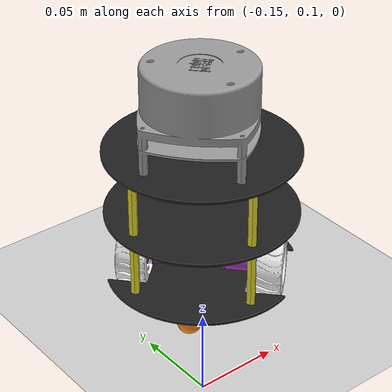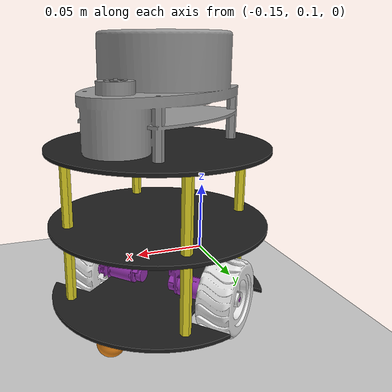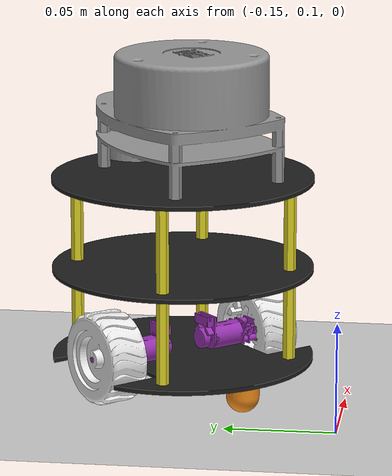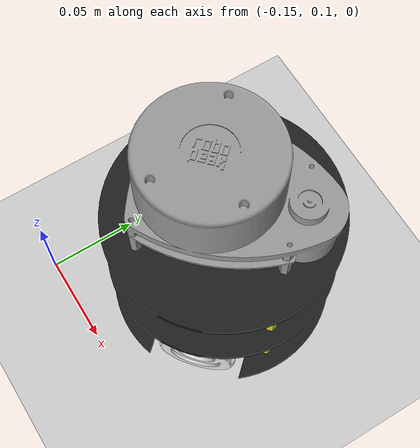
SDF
<sdf version="1.6">
 <world name="default">
  <light name="sun" type="directional">
   <pose>0 0 10 0 -0 0</pose>
   <diffuse>0.8 0.8 0.8 1</diffuse>
   <specular>0.2 0.2 0.2 1</specular>
   <attenuation>
    <range>1000</range>
    <constant>0.9</constant>
    <linear>0.01</linear>
    <quadratic>0.001</quadratic>
   </attenuation>
   <direction>-0.5 0.1 -0.9</direction>
  </light>
  <model name="ground_plane">
   <static>1</static>
   <link name="link">
    <collision name="collision">
     <geometry><plane><normal>0 0 1</normal><size>100 100</size></plane></geometry>
     <surface><friction><ode><mu>100</mu><mu2>50</mu2></ode></friction></surface>
    </collision>
    <visual name="visual">
     <cast_shadows>0</cast_shadows>
     <geometry><plane><normal>0 0 1</normal><size>100 100</size></plane></geometry>
     <material>
      <script><uri>file://media/materials/scripts/gazebo.material</uri><name>Gazebo/Grey</name></script>
     </material>
    </visual>
   </link>
  </model>
  <gravity>0 0 -9.8</gravity>
  <magnetic_field>6e-06 2.3e-05 -4.2e-05</magnetic_field>
  <atmosphere type="adiabatic"/>
  <physics name="default_physics" default="0" type="ode">
   <max_step_size>0.001</max_step_size>
   <real_time_factor>1</real_time_factor>
   <real_time_update_rate>1000</real_time_update_rate>
  </physics>
  <scene><ambient>0.4 0.4 0.4 1</ambient><background>0.7 0.7 0.7 1</background><shadows>1</shadows></scene>
  <audio><device>default</device></audio>
  <spherical_coordinates>
   <surface_model>EARTH_WGS84</surface_model>
   <latitude_deg>0</latitude_deg>
   <longitude_deg>0</longitude_deg>
   <elevation>0</elevation>
   <heading_deg>0</heading_deg>
  </spherical_coordinates>
  <model name="auro">
   <link name="base_link">
    <inertial>
     <pose>4.7e-05 2e-05 0.045747 0 -0 0</pose>
     <mass>1.52381</mass>
     <inertia>
      <ixx>0.00462007</ixx>
      <ixy>-9.79522e-07</ixy>
      <ixz>-0.000165413</ixz>
      <iyy>0.00497893</iyy>
      <iyz>2.07865e-07</iyz>
      <izz>0.00142979</izz>
     </inertia>
    </inertial>
    <collision name="base_link_collision">
     <geometry>
      <mesh>
       <scale>0.001 0.001 0.001</scale>
       <uri>/home/venom/ros/my_test_ws/src/auro_description/meshes/base_link.stl</uri>
      </mesh>
     </geometry>
     <surface><friction><ode><mu>10</mu><mu2>10</mu2></ode></friction></surface>
    </collision>
    <collision name="base_link_fixed_joint_lump__stanoff_fl1_1_collision_1">
     <geometry>
      <mesh>
       <scale>0.001 0.001 0.001</scale>
       <uri>/home/venom/ros/my_test_ws/src/auro_description/meshes/stanoff_fl1_1.stl</uri>
      </mesh>
     </geometry>
     <surface><friction><ode><mu>10</mu><mu2>10</mu2></ode></friction></surface>
    </collision>
    <collision name="base_link_fixed_joint_lump__mid_plate_1_collision_2">
     <geometry>
      <mesh>
       <scale>0.001 0.001 0.001</scale>
       <uri>/home/venom/ros/my_test_ws/src/auro_description/meshes/mid_plate_1.stl</uri>
      </mesh>
     </geometry>
     <surface><friction><ode><mu>10</mu><mu2>10</mu2></ode></friction></surface>
    </collision>
    <collision name="base_link_fixed_joint_lump__stanoff_fl2_1_collision_3">
     <geometry>
      <mesh>
       <scale>0.001 0.001 0.001</scale>
       <uri>/home/venom/ros/my_test_ws/src/auro_description/meshes/stanoff_fl2_1.stl</uri>
      </mesh>
     </geometry>
     <surface><friction><ode><mu>10</mu><mu2>10</mu2></ode></friction></surface>
    </collision>
    <collision name="base_link_fixed_joint_lump__top_plate_1_collision_4">
     <geometry>
      <mesh>
       <scale>0.001 0.001 0.001</scale>
       <uri>/home/venom/ros/my_test_ws/src/auro_description/meshes/top_plate_1.stl</uri>
      </mesh>
     </geometry>
     <surface><friction><ode><mu>10</mu><mu2>10</mu2></ode></friction></surface>
    </collision>
    <collision name="base_link_fixed_joint_lump__lidar_v1_1_collision_5">
     <geometry>
      <mesh>
       <scale>0.001 0.001 0.001</scale>
       <uri>/home/venom/ros/my_test_ws/src/auro_description/meshes/lidar_v1_1.stl</uri>
      </mesh>
     </geometry>
     <surface><friction><ode><mu>10</mu><mu2>10</mu2></ode></friction></surface>
    </collision>
    <collision name="base_link_fixed_joint_lump__stanoff_fr2_1_collision_6">
     <geometry>
      <mesh>
       <scale>0.001 0.001 0.001</scale>
       <uri>/home/venom/ros/my_test_ws/src/auro_description/meshes/stanoff_fr2_1.stl</uri>
      </mesh>
     </geometry>
     <surface><friction><ode><mu>10</mu><mu2>10</mu2></ode></friction></surface>
    </collision>
    <collision name="base_link_fixed_joint_lump__stanoff_bl2_1_collision_7">
     <geometry>
      <mesh>
       <scale>0.001 0.001 0.001</scale>
       <uri>/home/venom/ros/my_test_ws/src/auro_description/meshes/stanoff_bl2_1.stl</uri>
      </mesh>
     </geometry>
     <surface><friction><ode><mu>10</mu><mu2>10</mu2></ode></friction></surface>
    </collision>
    <collision name="base_link_fixed_joint_lump__stanoff_br2_1_collision_8">
     <geometry>
      <mesh>
       <scale>0.001 0.001 0.001</scale>
       <uri>/home/venom/ros/my_test_ws/src/auro_description/meshes/stanoff_br2_1.stl</uri>
      </mesh>
     </geometry>
     <surface><friction><ode><mu>10</mu><mu2>10</mu2></ode></friction></surface>
    </collision>
    <collision name="base_link_fixed_joint_lump__stanoff_fr1_1_collision_9">
     <geometry>
      <mesh>
       <scale>0.001 0.001 0.001</scale>
       <uri>/home/venom/ros/my_test_ws/src/auro_description/meshes/stanoff_fr1_1.stl</uri>
      </mesh>
     </geometry>
     <surface><friction><ode><mu>10</mu><mu2>10</mu2></ode></friction></surface>
    </collision>
    <collision name="base_link_fixed_joint_lump__left_motor_link_1_collision_10">
     <geometry>
      <mesh>
       <scale>0.001 0.001 0.001</scale>
       <uri>/home/venom/ros/my_test_ws/src/auro_description/meshes/left_motor_link_1.stl</uri>
      </mesh>
     </geometry>
     <surface><friction><ode><mu>10</mu><mu2>10</mu2></ode></friction></surface>
    </collision>
    <collision name="base_link_fixed_joint_lump__right_motor_link_1_collision_11">
     <geometry>
      <mesh>
       <scale>0.001 0.001 0.001</scale>
       <uri>/home/venom/ros/my_test_ws/src/auro_description/meshes/right_motor_link_1.stl</uri>
      </mesh>
     </geometry>
     <surface><friction><ode><mu>10</mu><mu2>10</mu2></ode></friction></surface>
    </collision>
    <collision name="base_link_fixed_joint_lump__caster_1_collision_12">
     <geometry>
      <mesh>
       <scale>0.001 0.001 0.001</scale>
       <uri>/home/venom/ros/my_test_ws/src/auro_description/meshes/caster_1.stl</uri>
      </mesh>
     </geometry>
     <surface><friction><ode><mu>0.1</mu><mu2>0.1</mu2></ode></friction></surface>
    </collision>
    <collision name="base_link_fixed_joint_lump__caster_2_collision_13">
     <geometry>
      <mesh>
       <scale>0.001 0.001 0.001</scale>
       <uri>/home/venom/ros/my_test_ws/src/auro_description/meshes/caster_2.stl</uri>
      </mesh>
     </geometry>
     <surface><friction><ode><mu>0.1</mu><mu2>0.1</mu2></ode></friction></surface>
    </collision>
    <collision name="base_link_fixed_joint_lump__stanoff_bl1_1_collision_14">
     <geometry>
      <mesh>
       <scale>0.001 0.001 0.001</scale>
       <uri>/home/venom/ros/my_test_ws/src/auro_description/meshes/stanoff_bl1_1.stl</uri>
      </mesh>
     </geometry>
     <surface><friction><ode><mu>10</mu><mu2>10</mu2></ode></friction></surface>
    </collision>
    <collision name="base_link_fixed_joint_lump__stanoff_br1_1_collision_15">
     <geometry>
      <mesh>
       <scale>0.001 0.001 0.001</scale>
       <uri>/home/venom/ros/my_test_ws/src/auro_description/meshes/stanoff_br1_1.stl</uri>
      </mesh>
     </geometry>
     <surface><friction><ode><mu>10</mu><mu2>10</mu2></ode></friction></surface>
    </collision>
    <visual name="base_link_visual">
     <geometry>
      <mesh>
       <scale>0.001 0.001 0.001</scale>
       <uri>/home/venom/ros/my_test_ws/src/auro_description/meshes/base_link.stl</uri>
      </mesh>
     </geometry>
     <material>
      <script><name>Gazebo/FlatBlack</name><uri>file://media/materials/scripts/gazebo.material</uri></script>
     </material>
    </visual>
    <visual name="base_link_fixed_joint_lump__stanoff_fl1_1_visual_1">
     <geometry>
      <mesh>
       <scale>0.001 0.001 0.001</scale>
       <uri>/home/venom/ros/my_test_ws/src/auro_description/meshes/stanoff_fl1_1.stl</uri>
      </mesh>
     </geometry>
     <material>
      <script><name>Gazebo/DarkYellow</name><uri>file://media/materials/scripts/gazebo.material</uri></script>
     </material>
    </visual>
    <visual name="base_link_fixed_joint_lump__mid_plate_1_visual_2">
     <geometry>
      <mesh>
       <scale>0.001 0.001 0.001</scale>
       <uri>/home/venom/ros/my_test_ws/src/auro_description/meshes/mid_plate_1.stl</uri>
      </mesh>
     </geometry>
     <material>
      <script><name>Gazebo/FlatBlack</name><uri>file://media/materials/scripts/gazebo.material</uri></script>
     </material>
    </visual>
    <visual name="base_link_fixed_joint_lump__stanoff_fl2_1_visual_3">
     <geometry>
      <mesh>
       <scale>0.001 0.001 0.001</scale>
       <uri>/home/venom/ros/my_test_ws/src/auro_description/meshes/stanoff_fl2_1.stl</uri>
      </mesh>
     </geometry>
     <material>
      <script><name>Gazebo/DarkYellow</name><uri>file://media/materials/scripts/gazebo.material</uri></script>
     </material>
    </visual>
    <visual name="base_link_fixed_joint_lump__top_plate_1_visual_4">
     <geometry>
      <mesh>
       <scale>0.001 0.001 0.001</scale>
       <uri>/home/venom/ros/my_test_ws/src/auro_description/meshes/top_plate_1.stl</uri>
      </mesh>
     </geometry>
     <material>
      <script><name>Gazebo/FlatBlack</name><uri>file://media/materials/scripts/gazebo.material</uri></script>
     </material>
    </visual>
    <visual name="base_link_fixed_joint_lump__lidar_v1_1_visual_5">
     <geometry>
      <mesh>
       <scale>0.001 0.001 0.001</scale>
       <uri>/home/venom/ros/my_test_ws/src/auro_description/meshes/lidar_v1_1.stl</uri>
      </mesh>
     </geometry>
     <material>
      <script><name>Gazebo/Grey</name><uri>file://media/materials/scripts/gazebo.material</uri></script>
     </material>
    </visual>
    <visual name="base_link_fixed_joint_lump__stanoff_fr2_1_visual_6">
     <geometry>
      <mesh>
       <scale>0.001 0.001 0.001</scale>
       <uri>/home/venom/ros/my_test_ws/src/auro_description/meshes/stanoff_fr2_1.stl</uri>
      </mesh>
     </geometry>
     <material>
      <script><name>Gazebo/DarkYellow</name><uri>file://media/materials/scripts/gazebo.material</uri></script>
     </material>
    </visual>
    <visual name="base_link_fixed_joint_lump__stanoff_bl2_1_visual_7">
     <geometry>
      <mesh>
       <scale>0.001 0.001 0.001</scale>
       <uri>/home/venom/ros/my_test_ws/src/auro_description/meshes/stanoff_bl2_1.stl</uri>
      </mesh>
     </geometry>
     <material>
      <script><name>Gazebo/DarkYellow</name><uri>file://media/materials/scripts/gazebo.material</uri></script>
     </material>
    </visual>
    <visual name="base_link_fixed_joint_lump__stanoff_br2_1_visual_8">
     <geometry>
      <mesh>
       <scale>0.001 0.001 0.001</scale>
       <uri>/home/venom/ros/my_test_ws/src/auro_description/meshes/stanoff_br2_1.stl</uri>
      </mesh>
     </geometry>
     <material>
      <script><name>Gazebo/DarkYellow</name><uri>file://media/materials/scripts/gazebo.material</uri></script>
     </material>
    </visual>
    <visual name="base_link_fixed_joint_lump__stanoff_fr1_1_visual_9">
     <geometry>
      <mesh>
       <scale>0.001 0.001 0.001</scale>
       <uri>/home/venom/ros/my_test_ws/src/auro_description/meshes/stanoff_fr1_1.stl</uri>
      </mesh>
     </geometry>
     <material>
      <script><name>Gazebo/DarkYellow</name><uri>file://media/materials/scripts/gazebo.material</uri></script>
     </material>
    </visual>
    <visual name="base_link_fixed_joint_lump__left_motor_link_1_visual_10">
     <geometry>
      <mesh>
       <scale>0.001 0.001 0.001</scale>
       <uri>/home/venom/ros/my_test_ws/src/auro_description/meshes/left_motor_link_1.stl</uri>
      </mesh>
     </geometry>
     <material>
      <script><name>Gazebo/Purple</name><uri>file://media/materials/scripts/gazebo.material</uri></script>
     </material>
    </visual>
    <visual name="base_link_fixed_joint_lump__right_motor_link_1_visual_11">
     <geometry>
      <mesh>
       <scale>0.001 0.001 0.001</scale>
       <uri>/home/venom/ros/my_test_ws/src/auro_description/meshes/right_motor_link_1.stl</uri>
      </mesh>
     </geometry>
     <material>
      <script><name>Gazebo/Purple</name><uri>file://media/materials/scripts/gazebo.material</uri></script>
     </material>
    </visual>
    <visual name="base_link_fixed_joint_lump__caster_1_visual_12">
     <geometry>
      <mesh>
       <scale>0.001 0.001 0.001</scale>
       <uri>/home/venom/ros/my_test_ws/src/auro_description/meshes/caster_1.stl</uri>
      </mesh>
     </geometry>
     <material>
      <script><name>Gazebo/Orange</name><uri>file://media/materials/scripts/gazebo.material</uri></script>
     </material>
    </visual>
    <visual name="base_link_fixed_joint_lump__caster_2_visual_13">
     <geometry>
      <mesh>
       <scale>0.001 0.001 0.001</scale>
       <uri>/home/venom/ros/my_test_ws/src/auro_description/meshes/caster_2.stl</uri>
      </mesh>
     </geometry>
     <material>
      <script><name>Gazebo/Orange</name><uri>file://media/materials/scripts/gazebo.material</uri></script>
     </material>
    </visual>
    <visual name="base_link_fixed_joint_lump__stanoff_bl1_1_visual_14">
     <geometry>
      <mesh>
       <scale>0.001 0.001 0.001</scale>
       <uri>/home/venom/ros/my_test_ws/src/auro_description/meshes/stanoff_bl1_1.stl</uri>
      </mesh>
     </geometry>
     <material>
      <script><name>Gazebo/DarkYellow</name><uri>file://media/materials/scripts/gazebo.material</uri></script>
     </material>
    </visual>
    <visual name="base_link_fixed_joint_lump__stanoff_br1_1_visual_15">
     <geometry>
      <mesh>
       <scale>0.001 0.001 0.001</scale>
       <uri>/home/venom/ros/my_test_ws/src/auro_description/meshes/stanoff_br1_1.stl</uri>
      </mesh>
     </geometry>
     <material>
      <script><name>Gazebo/DarkYellow</name><uri>file://media/materials/scripts/gazebo.material</uri></script>
     </material>
    </visual>
    <sensor name="head_hokuyo_sensor" type="gpu_ray">
     <visualize>0</visualize>
     <update_rate>10</update_rate>
     <ray>
      <scan>
       <horizontal>
        <samples>720</samples>
        <resolution>1</resolution>
        <min_angle>-3.14159</min_angle>
        <max_angle>3.14159</max_angle>
       </horizontal>
      </scan>
      <range><min>0.1</min><max>20</max><resolution>0.01</resolution></range>
      <noise><type>gaussian</type><mean>0</mean><stddev>0.01</stddev></noise>
     </ray>
     <plugin name="gazebo_ros_head_hokuyo_controller" filename="libgazebo_ros_gpu_laser.so">
      <topicName>/scan</topicName>
      <frameName>lidar_v1_1</frameName>
      <robotNamespace>/</robotNamespace>
     </plugin>
     <pose>0 0 0.054 0 -0 0</pose>
    </sensor>
    <self_collide>1</self_collide>
   </link>
   <link name="left_wheel_link_1">
    <pose>0 -0.0499 0.021 0 -0 0</pose>
    <inertial>
     <mass>0.0200216</mass>
     <inertia><ixx>3e-06</ixx><ixy>0</ixy><ixz>-0</ixz><iyy>5e-06</iyy><iyz>-0</iyz><izz>3e-06</izz></inertia>
    </inertial>
    <collision name="left_wheel_link_1_collision">
     <pose>-0 0.0499 -0.021 0 -0 0</pose>
     <geometry>
      <mesh>
       <scale>0.001 0.001 0.001</scale>
       <uri>/home/venom/ros/my_test_ws/src/auro_description/meshes/left_wheel_link_1.stl</uri>
      </mesh>
     </geometry>
     <surface><friction><ode><mu>1000</mu><mu2>1000</mu2></ode></friction></surface>
    </collision>
    <visual name="left_wheel_link_1_visual">
     <pose>-0 0.0499 -0.021 0 -0 0</pose>
     <geometry>
      <mesh>
       <scale>0.001 0.001 0.001</scale>
       <uri>/home/venom/ros/my_test_ws/src/auro_description/meshes/left_wheel_link_1.stl</uri>
      </mesh>
     </geometry>
     <material>
      <script><name>Gazebo/White</name><uri>file://media/materials/scripts/gazebo.material</uri></script>
     </material>
    </visual>
    <self_collide>1</self_collide>
   </link>
   <joint name="left_motor_joint" type="revolute">
    <child>left_wheel_link_1</child>
    <parent>base_link</parent>
    <axis>
     <xyz>0 1 0</xyz>
     <limit><lower>-1e+16</lower><upper>1e+16</upper></limit>
     <dynamics><spring_reference>0</spring_reference><spring_stiffness>0</spring_stiffness></dynamics>
     <use_parent_model_frame>1</use_parent_model_frame>
    </axis>
   </joint>
   <link name="right_wheel_link_1">
    <pose>0 0.0499 0.021 0 -0 0</pose>
    <inertial>
     <pose>-0 -0.00754 1.1e-05 0 -0 0</pose>
     <mass>0.0200216</mass>
     <inertia><ixx>3e-06</ixx><ixy>0</ixy><ixz>0</ixz><iyy>5e-06</iyy><iyz>0</iyz><izz>3e-06</izz></inertia>
    </inertial>
    <collision name="right_wheel_link_1_collision">
     <pose>0 -0.0499 -0.021 0 -0 0</pose>
     <geometry>
      <mesh>
       <scale>0.001 0.001 0.001</scale>
       <uri>/home/venom/ros/my_test_ws/src/auro_description/meshes/right_wheel_link_1.stl</uri>
      </mesh>
     </geometry>
     <surface><friction><ode><mu>1000</mu><mu2>1000</mu2></ode></friction></surface>
    </collision>
    <visual name="right_wheel_link_1_visual">
     <pose>0 -0.0499 -0.021 0 -0 0</pose>
     <geometry>
      <mesh>
       <scale>0.001 0.001 0.001</scale>
       <uri>/home/venom/ros/my_test_ws/src/auro_description/meshes/right_wheel_link_1.stl</uri>
      </mesh>
     </geometry>
     <material>
      <script><name>Gazebo/White</name><uri>file://media/materials/scripts/gazebo.material</uri></script>
     </material>
    </visual>
    <self_collide>1</self_collide>
   </link>
   <joint name="right_motor_joint" type="revolute">
    <child>right_wheel_link_1</child>
    <parent>base_link</parent>
    <axis>
     <xyz>0 1 0</xyz>
     <limit><lower>-1e+16</lower><upper>1e+16</upper></limit>
     <dynamics><spring_reference>0</spring_reference><spring_stiffness>0</spring_stiffness></dynamics>
     <use_parent_model_frame>1</use_parent_model_frame>
    </axis>
   </joint>
   <plugin name="control" filename="libgazebo_ros_control.so"><robotNamespace>/</robotNamespace></plugin>
   <static>0</static>
   <plugin name="differential_drive_controller" filename="libgazebo_ros_diff_drive.so">
    <updateRate>20</updateRate>
    <leftJoint>left_motor_joint</leftJoint>
    <rightJoint>right_motor_joint</rightJoint>
    <wheelSeparation>0.36</wheelSeparation>
    <wheelDiameter>0.20</wheelDiameter>
    <wheelAcceleration>1.0</wheelAcceleration>
    <wheelTorque>20</wheelTorque>
    <commandTopic>cmd_vel</commandTopic>
    <odometryTopic>odom</odometryTopic>
    <odometryFrame>odom</odometryFrame>
    <robotBaseFrame>base_link</robotBaseFrame>
    <odometrySource>1</odometrySource>
    <publishWheelTF>1</publishWheelTF>
    <publishOdom>1</publishOdom>
    <publishWheelJointState>1</publishWheelJointState>
    <legacyMode>0</legacyMode>
    <robotNamespace>/</robotNamespace>
   </plugin>
   <pose>-0.08933 0.176274 -0 -0.000285 1e-06 -2.40394</pose>
  </model>
 </world>
</sdf>
